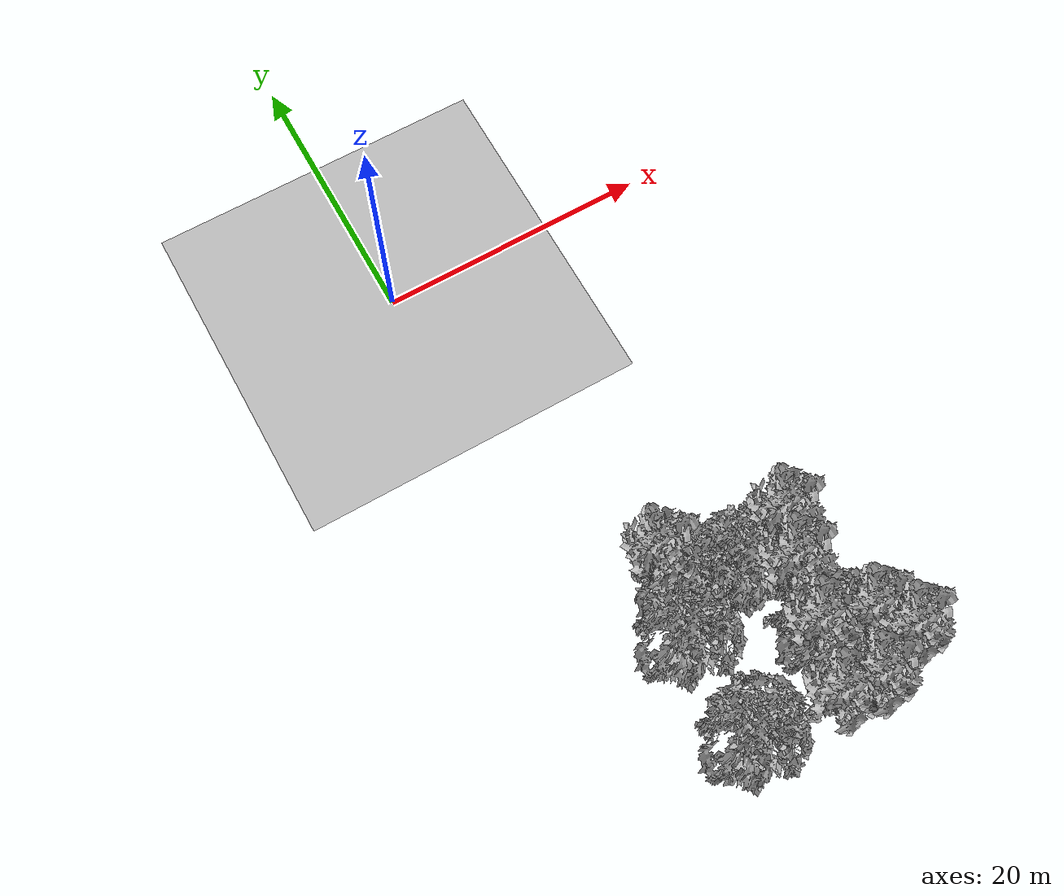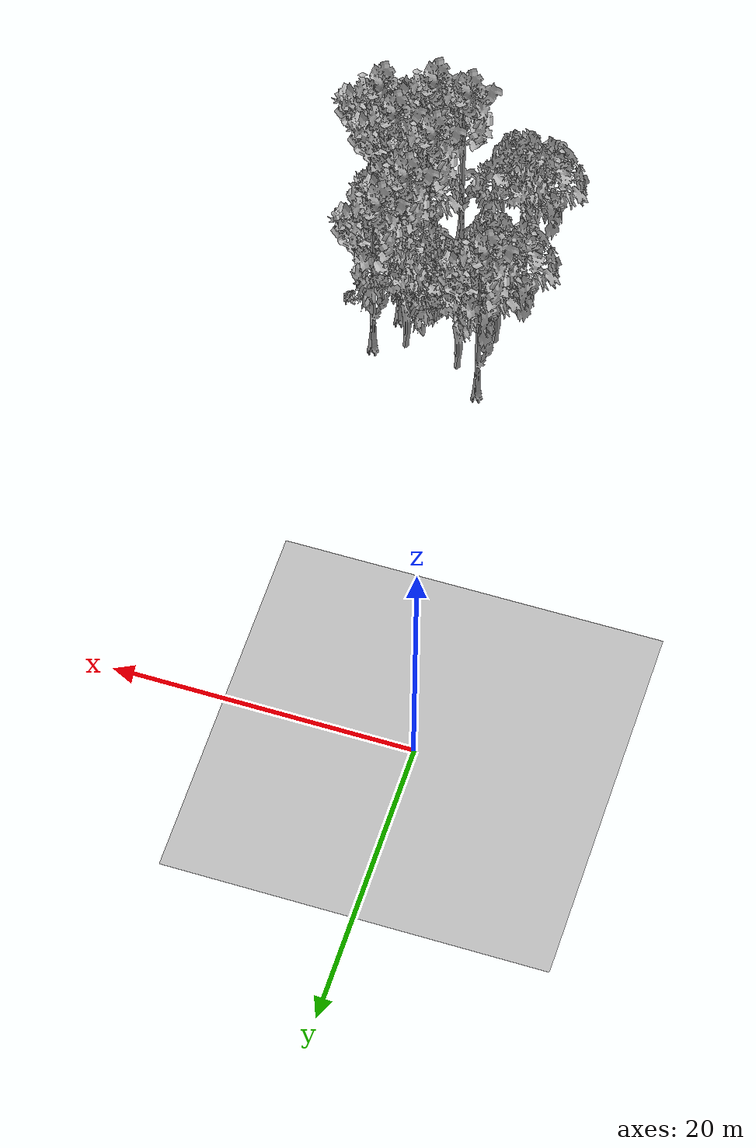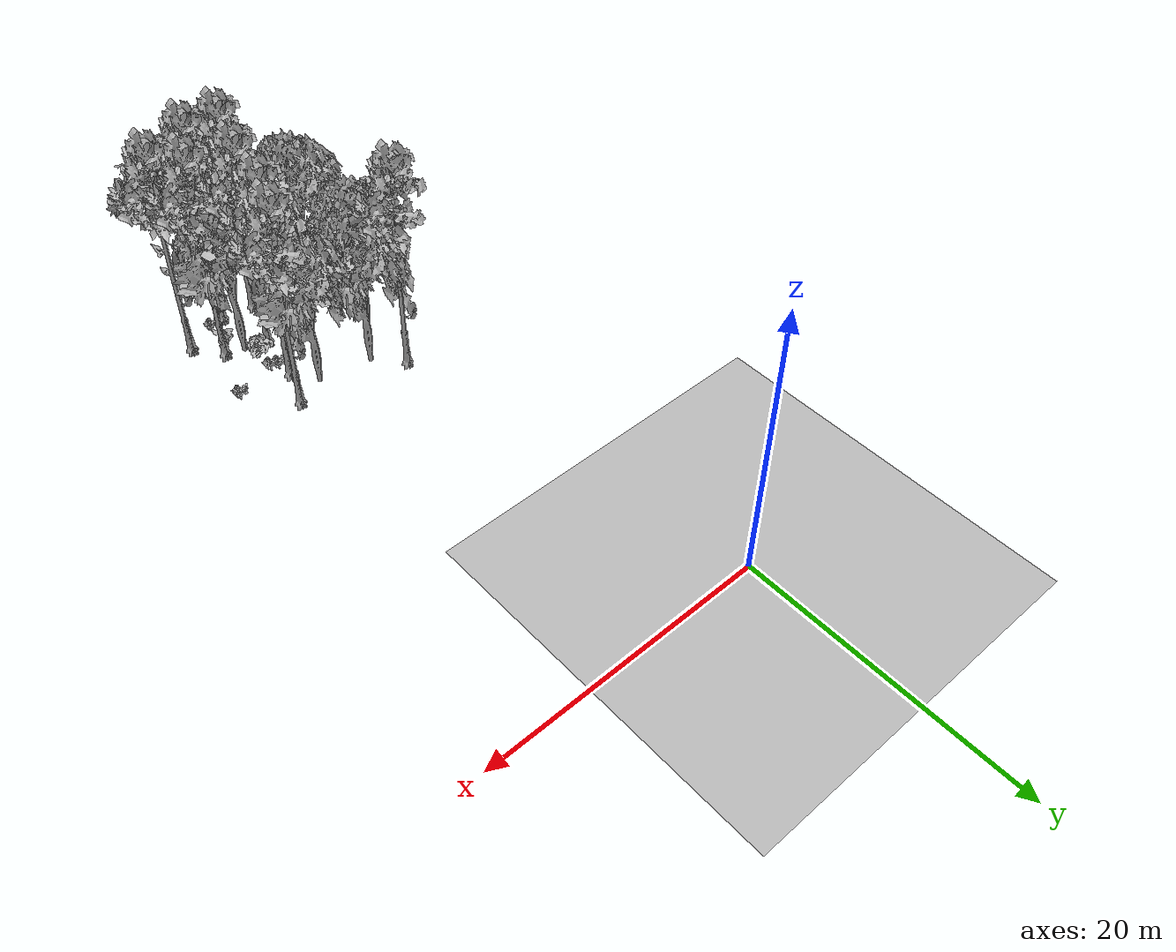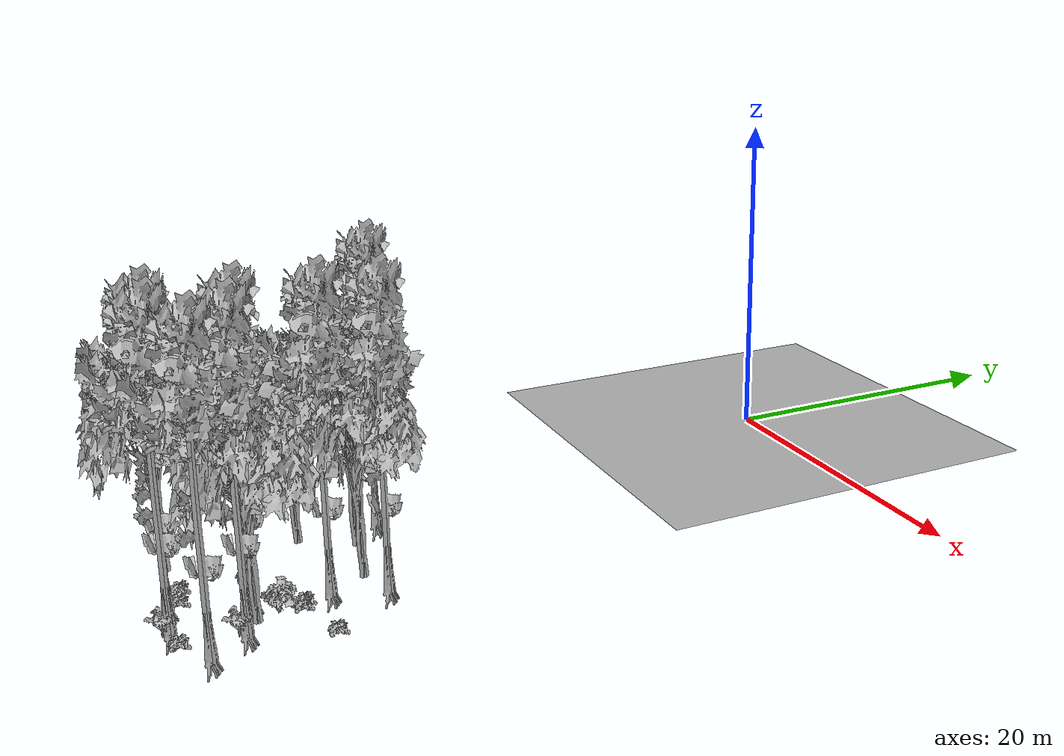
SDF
<sdf version="1.7">
 <world name="default">
  <model name="ground_plane">
   <static>1</static>
   <link name="link">
    <collision name="collision">
     <pose>-50 0 0 0 -0 0</pose>
     <geometry><plane><normal>0 0 1</normal><size>80 80</size></plane></geometry>
     <surface><contact><ode><min_depth>0.01</min_depth><max_vel>0</max_vel></ode></contact></surface>
    </collision>
    <visual name="grass">
     <cast_shadows>0</cast_shadows>
     <geometry>
      <mesh>
       <scale>0.46714285714285714 0.46714285714285714 0.1</scale>
       <uri>file://grass_plane/meshes/grass_plane.dae</uri>
      </mesh>
     </geometry>
    </visual>
   </link>
  </model>
  <model name="Tree 75">
   <static>1</static>
   <pose>11.965946957892946 -35.596759438018964 0 1.57079 -0 0</pose>
   <link name="link">
    <collision name="collision">
     <geometry><mesh><scale>3.5 5 3.5</scale><uri>model://tree_2/meshes/tree_2.obj</uri></mesh></geometry>
    </collision>
    <visual name="visual">
     <geometry><mesh><scale>3.5 5 3.5</scale><uri>model://tree_2/meshes/tree_2.obj</uri></mesh></geometry>
    </visual>
   </link>
  </model>
  <model name="Tree 103">
   <static>1</static>
   <pose>11.419422773059821 -39.553708896558376 0 1.57079 -0 0</pose>
   <link name="link">
    <collision name="collision">
     <geometry><mesh><scale>3.5 5 3.5</scale><uri>model://tree_9/meshes/tree_9.obj</uri></mesh></geometry>
    </collision>
    <visual name="visual">
     <geometry><mesh><scale>3.5 5 3.5</scale><uri>model://tree_9/meshes/tree_9.obj</uri></mesh></geometry>
    </visual>
   </link>
  </model>
  <model name="Tree 127">
   <static>1</static>
   <pose>11.952166683210834 -28.961138913448174 0 1.57079 -0 0</pose>
   <link name="link">
    <collision name="collision">
     <geometry><mesh><scale>3.5 5 3.5</scale><uri>model://tree_9/meshes/tree_9.obj</uri></mesh></geometry>
    </collision>
    <visual name="visual">
     <geometry><mesh><scale>3.5 5 3.5</scale><uri>model://tree_9/meshes/tree_9.obj</uri></mesh></geometry>
    </visual>
   </link>
  </model>
  <model name="Tree 211">
   <static>1</static>
   <pose>10.310195426674703 -35.45604417866204 0 1.57079 -0 0</pose>
   <link name="link">
    <collision name="collision">
     <geometry><mesh><scale>3.5 5 3.5</scale><uri>model://tree_9/meshes/tree_9.obj</uri></mesh></geometry>
    </collision>
    <visual name="visual">
     <geometry><mesh><scale>3.5 5 3.5</scale><uri>model://tree_9/meshes/tree_9.obj</uri></mesh></geometry>
    </visual>
   </link>
  </model>
  <model name="Tree 282">
   <static>1</static>
   <pose>14.682189348246204 -38.21463995975735 0 1.57079 -0 0</pose>
   <link name="link">
    <collision name="collision">
     <geometry><mesh><scale>3.5 5 3.5</scale><uri>model://tree_9/meshes/tree_9.obj</uri></mesh></geometry>
    </collision>
    <visual name="visual">
     <geometry><mesh><scale>3.5 5 3.5</scale><uri>model://tree_9/meshes/tree_9.obj</uri></mesh></geometry>
    </visual>
   </link>
  </model>
  <model name="Tree 360">
   <static>1</static>
   <pose>9.09816049141294 -39.33167916037709 0 1.57079 -0 0</pose>
   <link name="link">
    <collision name="collision">
     <geometry><mesh><scale>3.5 5 3.5</scale><uri>model://tree_9/meshes/tree_9.obj</uri></mesh></geometry>
    </collision>
    <visual name="visual">
     <geometry><mesh><scale>3.5 5 3.5</scale><uri>model://tree_9/meshes/tree_9.obj</uri></mesh></geometry>
    </visual>
   </link>
  </model>
  <model name="Tree 408">
   <static>1</static>
   <pose>6.075682136090997 -29.073401165869104 0 1.57079 -0 0</pose>
   <link name="link">
    <collision name="collision">
     <geometry><mesh><scale>3.5 5 3.5</scale><uri>model://tree_2/meshes/tree_2.obj</uri></mesh></geometry>
    </collision>
    <visual name="visual">
     <geometry><mesh><scale>3.5 5 3.5</scale><uri>model://tree_2/meshes/tree_2.obj</uri></mesh></geometry>
    </visual>
   </link>
  </model>
  <model name="Tree 412">
   <static>1</static>
   <pose>4.329186669546459 -27.388653333640445 0 1.57079 -0 0</pose>
   <link name="link">
    <collision name="collision">
     <geometry><mesh><scale>3.5 5 3.5</scale><uri>model://tree_9/meshes/tree_9.obj</uri></mesh></geometry>
    </collision>
    <visual name="visual">
     <geometry><mesh><scale>3.5 5 3.5</scale><uri>model://tree_9/meshes/tree_9.obj</uri></mesh></geometry>
    </visual>
   </link>
  </model>
  <model name="Tree 434">
   <static>1</static>
   <pose>4.4709103355421504 -38.79219720877478 0 1.57079 -0 0</pose>
   <link name="link">
    <collision name="collision">
     <geometry><mesh><scale>3.5 5 3.5</scale><uri>model://tree_2/meshes/tree_2.obj</uri></mesh></geometry>
    </collision>
    <visual name="visual">
     <geometry><mesh><scale>3.5 5 3.5</scale><uri>model://tree_2/meshes/tree_2.obj</uri></mesh></geometry>
    </visual>
   </link>
  </model>
  <model name="Tree 560">
   <static>1</static>
   <pose>4.305444493066304 -31.846666168269095 0 1.57079 -0 0</pose>
   <link name="link">
    <collision name="collision">
     <geometry><mesh><scale>3.5 5 3.5</scale><uri>model://tree_2/meshes/tree_2.obj</uri></mesh></geometry>
    </collision>
    <visual name="visual">
     <geometry><mesh><scale>3.5 5 3.5</scale><uri>model://tree_2/meshes/tree_2.obj</uri></mesh></geometry>
    </visual>
   </link>
  </model>
  <model name="Tree 588">
   <static>1</static>
   <pose>9.792359931338588 -29.70457006191568 0 1.57079 -0 0</pose>
   <link name="link">
    <collision name="collision">
     <geometry><mesh><scale>3.5 5 3.5</scale><uri>model://tree_2/meshes/tree_2.obj</uri></mesh></geometry>
    </collision>
    <visual name="visual">
     <geometry><mesh><scale>3.5 5 3.5</scale><uri>model://tree_2/meshes/tree_2.obj</uri></mesh></geometry>
    </visual>
   </link>
  </model>
  <model name="Tree 601">
   <static>1</static>
   <pose>13.194855424310106 -36.27803977545939 0 1.57079 -0 0</pose>
   <link name="link">
    <collision name="collision">
     <geometry><mesh><scale>3.5 5 3.5</scale><uri>model://tree_9/meshes/tree_9.obj</uri></mesh></geometry>
    </collision>
    <visual name="visual">
     <geometry><mesh><scale>3.5 5 3.5</scale><uri>model://tree_9/meshes/tree_9.obj</uri></mesh></geometry>
    </visual>
   </link>
  </model>
  <model name="Tree 619">
   <static>1</static>
   <pose>10.981059798052797 -31.689691804563516 0 1.57079 -0 0</pose>
   <link name="link">
    <collision name="collision">
     <geometry><mesh><scale>3.5 5 3.5</scale><uri>model://tree_9/meshes/tree_9.obj</uri></mesh></geometry>
    </collision>
    <visual name="visual">
     <geometry><mesh><scale>3.5 5 3.5</scale><uri>model://tree_9/meshes/tree_9.obj</uri></mesh></geometry>
    </visual>
   </link>
  </model>
  <model name="Bush 3">
   <static>1</static>
   <pose>14.473093629879124 -32.30139084196577 0 1.57079 -0 0</pose>
   <link name="link">
    <collision name="collision">
     <geometry><mesh><scale>2 2 2</scale><uri>model://bush_2/meshes/bush_2.obj</uri></mesh></geometry>
     <surface><contact><collide_without_contact>false</collide_without_contact></contact></surface>
    </collision>
    <visual name="visual">
     <geometry><mesh><scale>2 2 2</scale><uri>model://bush_2/meshes/bush_2.obj</uri></mesh></geometry>
    </visual>
   </link>
  </model>
  <model name="Bush 57">
   <static>1</static>
   <pose>10.97195534694005 -33.038135720010175 0 1.57079 -0 0</pose>
   <link name="link">
    <collision name="collision">
     <geometry><mesh><scale>2 2 2</scale><uri>model://bush_2/meshes/bush_2.obj</uri></mesh></geometry>
     <surface><contact><collide_without_contact>false</collide_without_contact></contact></surface>
    </collision>
    <visual name="visual">
     <geometry><mesh><scale>2 2 2</scale><uri>model://bush_2/meshes/bush_2.obj</uri></mesh></geometry>
    </visual>
   </link>
  </model>
  <model name="Bush 105">
   <static>1</static>
   <pose>11.470505579709162 -33.26620145450115 0 1.57079 -0 0</pose>
   <link name="link">
    <collision name="collision">
     <geometry><mesh><scale>2 2 2</scale><uri>model://bush_2/meshes/bush_2.obj</uri></mesh></geometry>
     <surface><contact><collide_without_contact>false</collide_without_contact></contact></surface>
    </collision>
    <visual name="visual">
     <geometry><mesh><scale>2 2 2</scale><uri>model://bush_2/meshes/bush_2.obj</uri></mesh></geometry>
    </visual>
   </link>
  </model>
  <model name="Bush 126">
   <static>1</static>
   <pose>11.586219234773544 -34.456073766915324 0 1.57079 -0 0</pose>
   <link name="link">
    <collision name="collision">
     <geometry><mesh><scale>2 2 2</scale><uri>model://bush_1/meshes/bush_1.obj</uri></mesh></geometry>
     <surface><contact><collide_without_contact>false</collide_without_contact></contact></surface>
    </collision>
    <visual name="visual">
     <geometry><mesh><scale>2 2 2</scale><uri>model://bush_1/meshes/bush_1.obj</uri></mesh></geometry>
    </visual>
   </link>
  </model>
  <model name="Bush 140">
   <static>1</static>
   <pose>8.298014163280207 -38.70030631817541 0 1.57079 -0 0</pose>
   <link name="link">
    <collision name="collision">
     <geometry><mesh><scale>2 2 2</scale><uri>model://bush_2/meshes/bush_2.obj</uri></mesh></geometry>
     <surface><contact><collide_without_contact>false</collide_without_contact></contact></surface>
    </collision>
    <visual name="visual">
     <geometry><mesh><scale>2 2 2</scale><uri>model://bush_2/meshes/bush_2.obj</uri></mesh></geometry>
    </visual>
   </link>
  </model>
  <model name="Bush 242">
   <static>1</static>
   <pose>12.990476076947374 -36.61566533262247 0 1.57079 -0 0</pose>
   <link name="link">
    <collision name="collision">
     <geometry><mesh><scale>2 2 2</scale><uri>model://bush_0/meshes/bush_0.obj</uri></mesh></geometry>
     <surface><contact><collide_without_contact>false</collide_without_contact></contact></surface>
    </collision>
    <visual name="visual">
     <geometry><mesh><scale>2 2 2</scale><uri>model://bush_0/meshes/bush_0.obj</uri></mesh></geometry>
    </visual>
   </link>
  </model>
  <model name="Bush 249">
   <static>1</static>
   <pose>12.400345985322957 -39.330206798870165 0 1.57079 -0 0</pose>
   <link name="link">
    <collision name="collision">
     <geometry><mesh><scale>2 2 2</scale><uri>model://bush_2/meshes/bush_2.obj</uri></mesh></geometry>
     <surface><contact><collide_without_contact>false</collide_without_contact></contact></surface>
    </collision>
    <visual name="visual">
     <geometry><mesh><scale>2 2 2</scale><uri>model://bush_2/meshes/bush_2.obj</uri></mesh></geometry>
    </visual>
   </link>
  </model>
  <model name="Bush 421">
   <static>1</static>
   <pose>7.0642071116908625 -35.20352509201491 0 1.57079 -0 0</pose>
   <link name="link">
    <collision name="collision">
     <geometry><mesh><scale>2 2 2</scale><uri>model://bush_2/meshes/bush_2.obj</uri></mesh></geometry>
     <surface><contact><collide_without_contact>false</collide_without_contact></contact></surface>
    </collision>
    <visual name="visual">
     <geometry><mesh><scale>2 2 2</scale><uri>model://bush_2/meshes/bush_2.obj</uri></mesh></geometry>
    </visual>
   </link>
  </model>
  <model name="Bush 510">
   <static>1</static>
   <pose>6.918005434698443 -38.47832792468068 0 1.57079 -0 0</pose>
   <link name="link">
    <collision name="collision">
     <geometry><mesh><scale>2 2 2</scale><uri>model://bush_2/meshes/bush_2.obj</uri></mesh></geometry>
     <surface><contact><collide_without_contact>false</collide_without_contact></contact></surface>
    </collision>
    <visual name="visual">
     <geometry><mesh><scale>2 2 2</scale><uri>model://bush_2/meshes/bush_2.obj</uri></mesh></geometry>
    </visual>
   </link>
  </model>
  <model name="Bush 601">
   <static>1</static>
   <pose>11.38407585540596 -39.89066590319894 0 1.57079 -0 0</pose>
   <link name="link">
    <collision name="collision">
     <geometry><mesh><scale>2 2 2</scale><uri>model://bush_0/meshes/bush_0.obj</uri></mesh></geometry>
     <surface><contact><collide_without_contact>false</collide_without_contact></contact></surface>
    </collision>
    <visual name="visual">
     <geometry><mesh><scale>2 2 2</scale><uri>model://bush_0/meshes/bush_0.obj</uri></mesh></geometry>
    </visual>
   </link>
  </model>
 </world>
</sdf>
